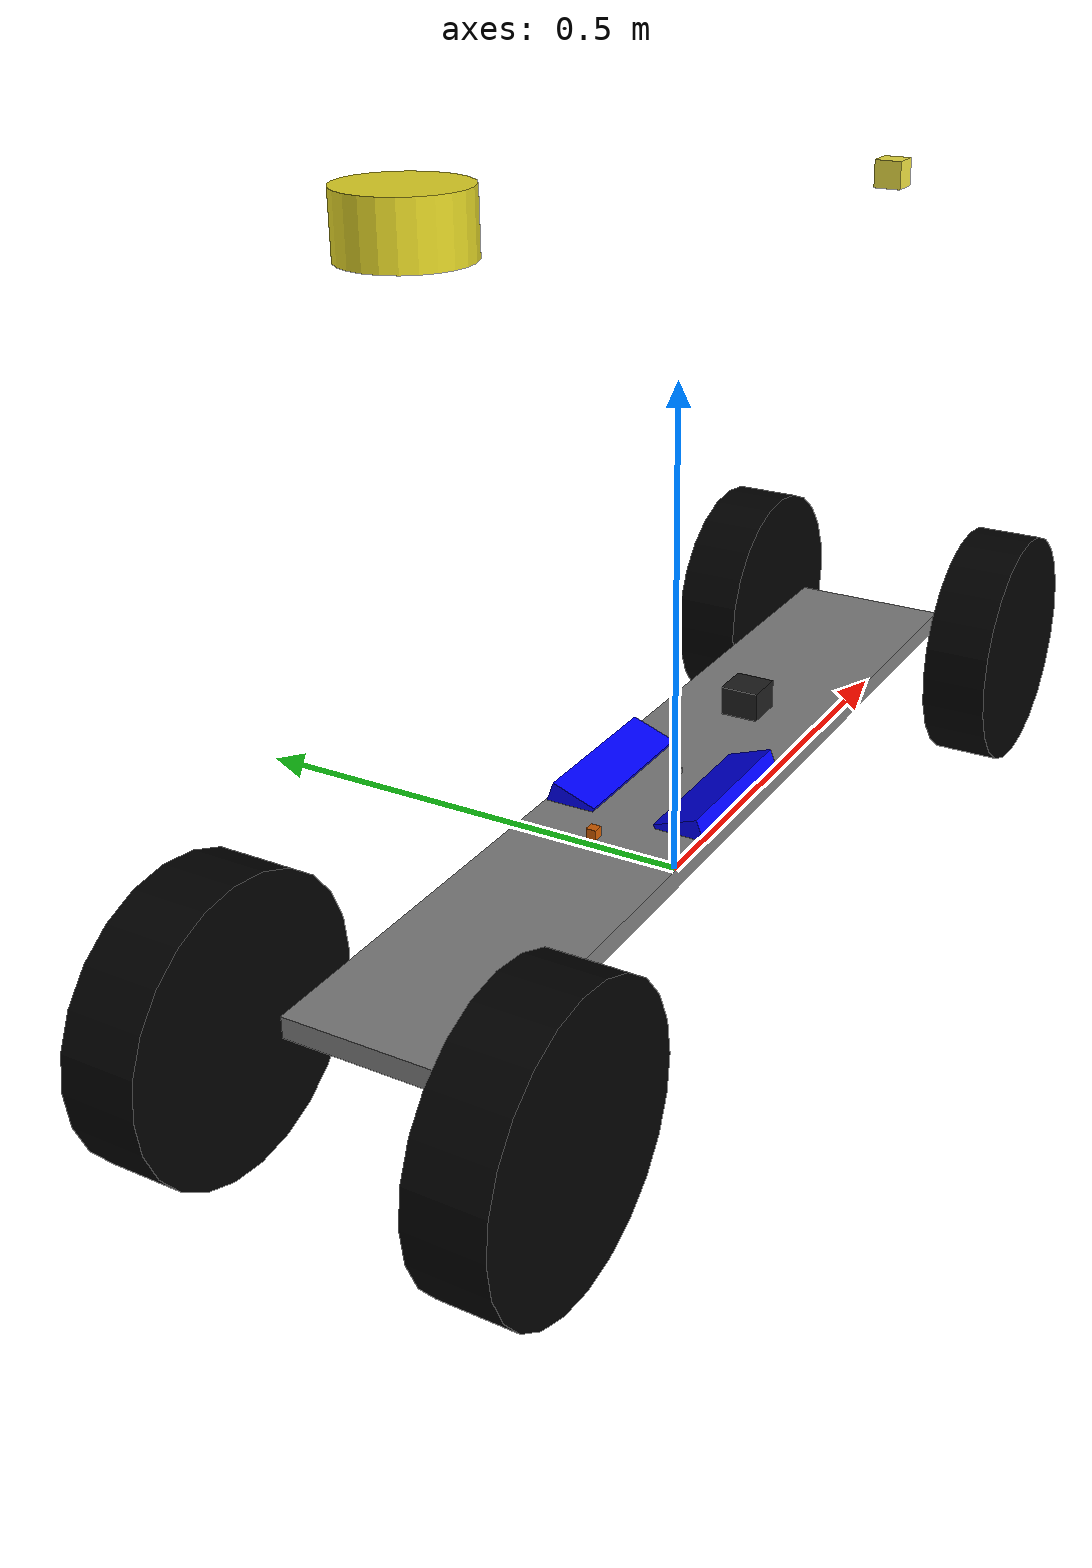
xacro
<?xml version="1.0"?>
<robot name="racecar" xmlns:xacro="http://www.ros.org/wiki/xacro">

  <!-- Degree-to-radian conversions -->
  <xacro:property name="degrees_45" value="0.785398163"/>
  <xacro:property name="degrees_90" value="1.57079633"/>

  <!-- chassis_length is measured along the x axis, chassis_width
       along the y axis, and chassis_height along the z axis. -->
  <xacro:property name="chassis_length" value="1.0"/>
  <xacro:property name="chassis_width" value="0.168"/>
  <xacro:property name="chassis_height" value="0.02"/>
  <xacro:property name="chassis_mass" value="10"/>

  <xacro:property name="battery_x_offset" value="0.055"/>
  <xacro:property name="battery_dist" value="0.065"/>
  <xacro:property name="battery_comp_depth" value="0.02"/>
  <xacro:property name="battery_comp_angle" value="0.34906585"/>
  <xacro:property name="battery_length" value="0.16"/>
  <xacro:property name="battery_width" value="0.047"/>
  <xacro:property name="battery_height" value="0.024"/>
  <xacro:property name="battery_mass" value="0.5025"/>

  <xacro:property name="hub_dia" value="0.3"/>
  <xacro:property name="tire_dia" value="0.26"/>
  <xacro:property name="tire_width" value="0.07"/>
  <xacro:property name="hex_hub_depth" value="0.005"/>
  <xacro:property name="wheel_mass" value="0.6"/>

  <xacro:property name="wheelbase" value="1.0"/>
  <xacro:property name="hex_hub_dist" value="0.365"/>
  <xacro:property name="axle_length" value="0.03"/>
  <xacro:property name="wheel_travel" value="0.084"/>
  <xacro:property name="shock_z_offset" value="0.0655"/>

  <xacro:property name="shock_eff_limit" value="12.5106"/>
  <xacro:property name="shock_vel_limit" value="1000"/>

  <xacro:property name="axle_eff_limit" value="5.12766"/>
  <xacro:property name="axle_vel_limit" value="244.8696"/>

  <!-- These constants are used to simulate a Traxxas 2056 servo operated at
       6 V. servo_stall_torque is measured in N m. servo_no_load_speed is
       measured in rad/s. -->
  <xacro:property name="servo_stall_torque" value="0.5649"/>
  <xacro:property name="servo_no_load_speed" value="4.553"/>

  <xacro:property name="layer_mass"   value="0.0" />
  <xacro:property name="layer_x" value="0.40"/>
  <xacro:property name="layer_y" value="0.18"/>
  <xacro:property name="layer_z" value="0.01"/>
  <xacro:property name="layer_height" value="0.08"/>

  <xacro:property name="layer" value="platform" />

  <material name="battery_mat">
    <color rgba="0 0 1 1"/>
  </material>
  <material name="chassis_mat">
    <color rgba="0.5 0.5 0.5 1"/>
  </material>
  <material name="tire_mat">
    <color rgba="0 0 0 1"/>
  </material>
  <material name="yellow">
    <color rgba="1 0.4 0 1"/>
  </material>

  <!-- Null inertial element. This is needed to make the model work with
       Gazebo. -->
  <xacro:macro name="null_inertial">
    <inertial>
      <mass value="0.001"/>
      <inertia ixx="0.001" ixy="0" ixz="0" iyy="0.001" iyz="0" izz="0.001"/>
    </inertial>
  </xacro:macro>

  <!-- Inertia of a solid cuboid. Width is measured along the x axis, depth
       along the y axis, and height along the z axis. -->
  <xacro:macro name="solid_cuboid_inertial"
               params="width depth height mass *origin">
    <inertial>
      <xacro:insert_block name="origin"/>
      <mass value="${mass}"/>
      <inertia ixx="${mass * (depth * depth + height * height) / 12}"
               ixy="0" ixz="0"
               iyy="${mass * (width * width + height * height) / 12}"
               iyz="0"
               izz="${mass * (width * width + depth * depth) / 12}"/>
    </inertial>
  </xacro:macro>

  <xacro:macro name="thick_walled_tube_inertial"
               params="inner_rad outer_rad height mass">
    <inertial>
      <mass value="${mass}"/>
      <inertia ixx="${(1 / 12) * mass * (3 * (inner_rad * inner_rad +
                    outer_rad * outer_rad) + height * height)}"
               ixy="0" ixz="0"
               iyy="${(1 / 12) * mass * (3 * (inner_rad * inner_rad +
                    outer_rad * outer_rad) + height * height)}"
               iyz="0"
               izz="${mass * (inner_rad * inner_rad +
                    outer_rad * outer_rad) / 2}"/>
    </inertial>
  </xacro:macro>

  <!-- Battery -->
  <xacro:macro name="battery" params="prefix reflect">
    <joint name="chassis_to_${prefix}_battery" type="fixed">
      <parent link="chassis"/>
      <child link="${prefix}_battery_offset"/>
      <origin xyz="${battery_x_offset - battery_length / 2}
                   ${reflect * battery_dist / 2}
                   0"
              rpy="${reflect * battery_comp_angle} 0 0"/>
    </joint>

    <link name="${prefix}_battery_offset">
      <xacro:null_inertial/>
    </link>

    <joint name="offset_to_${prefix}_battery" type="fixed">
      <parent link="${prefix}_battery_offset"/>
      <child link="${prefix}_battery"/>
      <origin xyz="0
                   ${reflect * battery_width / 2}
                   ${(battery_height / 2) - battery_comp_depth}"/>
    </joint>

    <link name="${prefix}_battery">
      <visual>
        <geometry>
          <box size="${battery_length} ${battery_width} ${battery_height}"/>
        </geometry>
        <material name="battery_mat"/>
      </visual>

      <collision>
        <geometry>
          <box size="${battery_length} ${battery_width} ${battery_height}"/>
        </geometry>
      </collision>

      <xacro:solid_cuboid_inertial
         width="${battery_length}" depth="${battery_width}"
         height="${battery_height}" mass="${battery_mass}">
        <origin/>
      </xacro:solid_cuboid_inertial>
    </link>

    <gazebo reference="${prefix}_battery">
      <material>Gazebo/Blue</material>
    </gazebo>
  </xacro:macro>

  <!-- Shock absorber -->
  <xacro:macro name="shock"
               params="lr_prefix fr_prefix lr_reflect fr_reflect child">
    <joint name="${lr_prefix}_${fr_prefix}_shock" type="prismatic">
      <parent link="chassis"/>
      <child link="${child}"/>

      <origin xyz="${fr_reflect * wheelbase / 2}
                   ${lr_reflect * ((hex_hub_dist / 2) - axle_length)}
                   ${(wheel_travel / 2) - shock_z_offset}"/>
      <axis xyz="0 0 -1"/>
      <limit lower="${-wheel_travel / 2}" upper="${wheel_travel / 2}"
             effort="${shock_eff_limit}" velocity="${shock_vel_limit}"/>
    </joint>
    <transmission name="${lr_prefix}_${fr_prefix}_shock_trans">
      <type>transmission_interface/SimpleTransmission</type>
      <joint name="${lr_prefix}_${fr_prefix}_shock">
        <hardwareInterface>hardware_interface/EffortJointInterface</hardwareInterface>
      </joint>
      <actuator name="${lr_prefix}_${fr_prefix}_shock_act">
        <!-- This hardwareInterface element exists for compatibility
             with ROS Hydro. -->
        <hardwareInterface>hardware_interface/EffortJointInterface</hardwareInterface>
        <mechanicalReduction>1</mechanicalReduction>
      </actuator>
    </transmission>
  </xacro:macro>

  <!-- The "wheel" macro defines an axle carrier, axle, and wheel. -->
  <xacro:macro name="wheel" params="lr_prefix fr_prefix lr_reflect">
    <link name="${lr_prefix}_${fr_prefix}_axle_carrier">
      <xacro:null_inertial/>
    </link>

    <!-- The left and right axles have the same axis so that identical
         rotation values cause the wheels to rotate in the same direction. -->
    <joint name="${lr_prefix}_${fr_prefix}_axle" type="continuous">
      <parent link="${lr_prefix}_${fr_prefix}_axle_carrier"/>
      <child link="${lr_prefix}_${fr_prefix}_wheel"/>
      <origin rpy="${degrees_90} 0 0"/>
      <axis xyz="0 0 -1"/>
      <limit effort="${axle_eff_limit}" velocity="${axle_vel_limit}"/>
    </joint>
    <transmission name="${lr_prefix}_${fr_prefix}_axle_trans">
      <type>transmission_interface/SimpleTransmission</type>
      <joint name="${lr_prefix}_${fr_prefix}_axle">
        <hardwareInterface>hardware_interface/EffortJointInterface</hardwareInterface>
      </joint>
      <actuator name="${lr_prefix}_${fr_prefix}_axle_act">
        <!-- This hardwareInterface element exists for compatibility
             with ROS Hydro. -->
        <hardwareInterface>hardware_interface/EffortJointInterface</hardwareInterface>
        <mechanicalReduction>1</mechanicalReduction>
      </actuator>
    </transmission>

    <link name="${lr_prefix}_${fr_prefix}_wheel">
      <visual>
        <origin xyz="0
                     ${lr_reflect * (axle_length - (tire_width /
                     2 - hex_hub_depth))}
                     0"/>
        <geometry>
          <cylinder radius="${tire_dia / 2}" length="${tire_width}"/>
        </geometry>
        <material name="tire_mat"/>
      </visual>

      <collision>
        <origin xyz="0
                     ${lr_reflect * (axle_length - (tire_width /
                     2 - hex_hub_depth))}
                     0"/>
        <geometry>
          <cylinder radius="${tire_dia / 2}" length="${tire_width}"/>
        </geometry>
      </collision>

      <xacro:thick_walled_tube_inertial
          inner_rad="${hub_dia / 2}" outer_rad="${tire_dia / 2}"
          height="${tire_width}" mass="${wheel_mass}"/>
    </link>

    <gazebo reference="${lr_prefix}_${fr_prefix}_wheel">
      <material>Gazebo/Black</material>
    </gazebo>
  </xacro:macro>

  <!-- Front wheel -->
  <xacro:macro name="front_wheel"
               params="lr_prefix fr_prefix lr_reflect fr_reflect">
    <xacro:shock lr_prefix="${lr_prefix}" fr_prefix="${fr_prefix}"
                 lr_reflect="${lr_reflect}" fr_reflect="${fr_reflect}"
                 child="${lr_prefix}_steering_link"/>

    <link name="${lr_prefix}_steering_link">
      <xacro:null_inertial/>
    </link>

    <joint name="${lr_prefix}_steering_joint" type="revolute">
      <parent link="${lr_prefix}_steering_link"/>
      <child link="${lr_prefix}_${fr_prefix}_axle_carrier"/>
      <axis xyz="0 0 1"/>
      <limit lower="${-degrees_45}" upper="${degrees_45}"
             effort="${servo_stall_torque}" velocity="${servo_no_load_speed}"/>
    </joint>
    <transmission name="${lr_prefix}_steering_trans">
      <type>transmission_interface/SimpleTransmission</type>
      <joint name="${lr_prefix}_steering_joint">
        <hardwareInterface>hardware_interface/EffortJointInterface</hardwareInterface>
      </joint>
      <actuator name="${lr_prefix}_steering_act">
        <!-- This hardwareInterface element exists for compatibility
             with ROS Hydro. -->
        <hardwareInterface>hardware_interface/EffortJointInterface</hardwareInterface>
        <mechanicalReduction>1</mechanicalReduction>
      </actuator>
    </transmission>

    <xacro:wheel lr_prefix="${lr_prefix}" fr_prefix="${fr_prefix}"
                 lr_reflect="${lr_reflect}"/>
  </xacro:macro>

  <!-- Rear wheel -->
  <xacro:macro name="rear_wheel"
               params="lr_prefix fr_prefix lr_reflect fr_reflect">
    <xacro:shock lr_prefix="${lr_prefix}" fr_prefix="${fr_prefix}"
                 lr_reflect="${lr_reflect}" fr_reflect="${fr_reflect}"
                 child="${lr_prefix}_${fr_prefix}_axle_carrier"/>
    <xacro:wheel lr_prefix="${lr_prefix}" fr_prefix="${fr_prefix}"
                 lr_reflect="${lr_reflect}"/>
  </xacro:macro>

    <link name="base_footprint"/>
  <!-- base_link must have geometry so that its axes can be displayed in
       rviz. -->
  <link name="base_link">
    <visual>
      <geometry>
        <box size="0.01 0.01 0.01"/>
      </geometry>
      <material name="chassis_mat"/>
    </visual>
  </link>
  <gazebo reference="base_link">
    <material>Gazebo/Grey</material>
  </gazebo>

  <joint name="base_footprint_to_base_link" type="fixed">
    <parent link="base_footprint"/>
    <child link="base_link"/>
    <origin xyz="0 0 ${(wheel_travel/2)+shock_z_offset}" />
  </joint>

  <!-- Chassis -->
  <link name="chassis">
    <visual>
      <origin xyz="0 0 ${-chassis_height / 2}"/>
      <geometry>
        <box size="${chassis_length} ${chassis_width} ${chassis_height}"/>
      </geometry>
      <material name="chassis_mat"/>
    </visual>

    <collision>
      <origin xyz="0 0 ${-chassis_height / 2}"/>
      <geometry>
        <box size="${chassis_length} ${chassis_width} ${chassis_height}"/>
      </geometry>
    </collision>

    <xacro:solid_cuboid_inertial
        width="${chassis_length}" depth="${chassis_width}"
        height="${chassis_height}" mass="${chassis_mass}">
      <origin xyz="0 0 ${-chassis_height / 2}"/>
    </xacro:solid_cuboid_inertial>
  </link>
  <gazebo reference="chassis">
    <material>Gazebo/Grey</material>
  </gazebo>

  <joint name="base_link_to_chassis" type="fixed">
    <parent link="base_link"/>
    <child link="chassis"/>
  </joint>

  <!-- Batteries -->
  <xacro:battery prefix="left" reflect="1"/>
  <xacro:battery prefix="right" reflect="-1"/>

  <!-- Wheels -->
  <xacro:front_wheel lr_prefix="left" fr_prefix="front"
                     lr_reflect="1" fr_reflect="1"/>
  <xacro:front_wheel lr_prefix="right" fr_prefix="front"
                     lr_reflect="-1" fr_reflect="1"/>
  <xacro:rear_wheel lr_prefix="left" fr_prefix="rear"
                    lr_reflect="1" fr_reflect="-1"/>
  <xacro:rear_wheel lr_prefix="right" fr_prefix="rear"
                    lr_reflect="-1" fr_reflect="-1"/>

  <gazebo>
    <plugin name="gazebo_ros_control" filename="libgazebo_ros_control.so">
    <legacyModeNS>true</legacyModeNS>
    <robotSimType>gazebo_ros_control/DefaultRobotHWSim</robotSimType>
    <robotNamespace>/racecar</robotNamespace>
    </plugin>
  </gazebo>

 <link name="imu_link">
            <inertial>
                <mass value="0.001" />
                <origin xyz="0 0 0" />
                <inertia ixx="0.001" ixy="0.0" ixz="0.0"
                         iyy="0.001" iyz="0.0"
                         izz="0.001" />
            </inertial>

            <visual>
                <origin xyz=" 0 0 0 " rpy="0 0 0" />
                <geometry>
                    <box size="0.04 0.04 0.03" />
                </geometry>
            </visual>

            <collision>
                <origin xyz="0.0 0.0 0.0" rpy="0 0 0" />
                <geometry>
                    <box size="0.04 0.04 0.03" />
                </geometry>
            </collision>
        </link>
        <gazebo reference="imu_link">
            <material>Gazebo/Black</material>
        </gazebo>

        <gazebo reference="imu_link">
            <gravity>true</gravity>
            <sensor name="imu_sensor" type="imu">
                <always_on>true</always_on>
                <update_rate>100</update_rate>
                <visualize>true</visualize>
                <topic>/imu_data</topic>
                <plugin filename="libgazebo_ros_imu_sensor.so" name="imu_plugin">
                    <topicName>/imu</topicName>
                    <bodyName>imu_link</bodyName>
                    <updateRateHZ>100.0</updateRateHZ>
                    <gaussianNoise>0.0</gaussianNoise>
                    <xyzOffset>0 0 0</xyzOffset>
                    <rpyOffset>0 0 0</rpyOffset>
                    <frameName>imu_link</frameName>
                </plugin>
                <pose>0 0 0 0 0 0</pose>
            </sensor>
        </gazebo>

        <link name="lidar_link">
            <inertial>
                <mass value="0.001" />
                <origin xyz="0 0 0" />
                <inertia ixx="0.001" ixy="0.0" ixz="0.0"
                         iyy="0.001" iyz="0.0"
                         izz="0.001" />
            </inertial>

            <visual>
                <origin xyz=" 0 0 0 " rpy="0 0 0" />
                <geometry>
                    <cylinder length="0.05" radius="0.05"/>
                </geometry>
            </visual>

            <collision>
                <origin xyz="0.0 0.0 0.0" rpy="0 0 0" />
                <geometry>
                    <cylinder length="0.06" radius="0.05"/>
                </geometry>
            </collision>
        </link>
        <gazebo reference="lidar_link">
            <material>yellow</material>
        </gazebo>

        <gazebo reference="lidar_link">
            <sensor type="ray" name="ls01g">
                <pose>0 0 0 0 0 0</pose>
                <visualize>false</visualize>
                <update_rate>40.0</update_rate>
                <ray>
                    <scan>
                        <horizontal>
                            <samples>720</samples>
                            <resolution>1</resolution>
                            <min_angle>-3.1415926</min_angle>
                            <max_angle>3.1415926</max_angle>
                        </horizontal>
                    </scan>
                    <range>
                        <min>0.10</min>
                        <max>8.0</max>
                        <resolution>0.01</resolution>
                    </range>
                    <noise>
                        <type>gaussian</type>
                        <mean>0.0</mean>
                        <stddev>0.01</stddev>
                    </noise>
                </ray>
                <plugin name="gazebo_ls01g" filename="libgazebo_ros_laser.so">
                    <topicName>/scan</topicName>
                    <frameName>lidar_link</frameName>
                </plugin>
            </sensor>
        </gazebo>

     <link name="camera_link">
	    <inertial>
		<mass value="0.001" />
		<origin xyz="0 0 0" />
		<inertia ixx="0.001" ixy="0.0" ixz="0.0"
		         iyy="0.001" iyz="0.0"
		         izz="0.001" />
	    </inertial>

	    <visual>
		<origin xyz=" 0 0 0 " rpy="1.57 0 1.57" />
		<geometry>
		    <box size="0.03 0.03 0.03" />
		</geometry>
	    </visual>

	    <collision>
		<origin xyz="0.0 0.0 0.0" rpy="0 0 0" />
		<geometry>
		    <box size="0.03 0.03 0.03" />
		</geometry>
	    </collision>
	</link>

    <gazebo reference="camera_link">
      <sensor type="depth" name="camera">
        <always_on>true</always_on>
        <update_rate>20.0</update_rate>
        <camera>
          <horizontal_fov>1.3962</horizontal_fov>
          <image>
            <format>B8G8R8</format>
            <width>640</width>
            <height>480</height>
          </image>
          <clip>
            <near>0.05</near>
            <far>8.0</far>
          </clip>
        </camera>
     <plugin name="camera_controller" filename="libgazebo_ros_openni_kinect.so">
       <baseline>0.1</baseline>
       <alwaysOn>true</alwaysOn>
       <updateRate>30.0</updateRate>
       <cameraName>camera</cameraName>
       <imageTopicName>/camera/rgb/image_raw</imageTopicName>
       <cameraInfoTopicName>/camera/rgb/camera_info</cameraInfoTopicName>
       <depthImageTopicName>/camera/depth/image_raw</depthImageTopicName>
       <depthImageCameraInfoTopicName>/camera/depth_registered/camera_info</depthImageCameraInfoTopicName>
       <pointCloudTopicName>/camera/depth_registered/points</pointCloudTopicName>
       <frameName>camera_link_fake</frameName>
       <distortion_k1>0.0</distortion_k1>
       <distortion_k2>0.0</distortion_k2>
       <distortion_k3>0.0</distortion_k3>
       <distortion_t1>0.0</distortion_t1>
       <distortion_t2>0.0</distortion_t2>
       <pointCloudCutoff>0.4</pointCloudCutoff>
     </plugin>
   </sensor>
  </gazebo>

  <joint name="lidar_joint" type="fixed">
    <origin xyz="-0.4 0 0.6" rpy="0 0 0" />
    <parent link="base_link"/>
    <child link="lidar_link"/>
  </joint>

  <joint name="imu_joint" type="fixed">
    <origin xyz="0.16 0 0.015" rpy="0 0 0" />
    <parent link="base_link"/>
    <child link="imu_link"/>
  </joint>

  <joint name="camera_joint" type="fixed">
    <origin xyz="0.5 0 0.5" rpy="0 0 0" />
    <parent link="base_link"/>
    <child link="camera_link"/>
  </joint>

  <link name="camera_link_fake"></link>
  <joint name="camera_joint_fake" type="fixed">
    <origin xyz="0 0 0" rpy="-1.5708 0 -1.5708"/>
    <parent link="camera_link"/>
    <child link="camera_link_fake"/>
  </joint>

  <joint name="gps_joint" type="fixed">
  <origin xyz="-0.16 0 0.015" rpy="0 0 0" />
  <parent link="base_link"/>
  <child link="gps_link"/>
  </joint>

<link name="gps_link">
  <inertial>
   <mass value="0.001" />
   <origin xyz="0 0 0" />
   <inertia ixx="0.001" ixy="0.0" ixz="0.0"
		         iyy="0.001" iyz="0.0"
		         izz="0.001" />
  </inertial>
  <visual>
    <origin xyz="0 0 0" rpy="0 0 0" />
    <geometry>
      <box size="0.01 0.01 0.01" />
    </geometry>
  </visual>
  <collision>
    <origin xyz="0 0 0" rpy="0 0 0" />
    <geometry>
      <box size="0.01 0.01 0.01" />
    </geometry>
  </collision>
</link>

<gazebo>
  <plugin name="quadrotor_gps_sim" filename="libhector_gazebo_ros_gps.so">
    <alwaysOn>true</alwaysOn>
    <updateRate>10.0</updateRate>
    <frameId>base_link</frameId>
    <topicName>fix</topicName>
    <velocityTopicName>fix_vel</velocityTopicName>
    <drift>5.0 5.0 5.0</drift>
    <gaussianNoise>0.1 0.1 0.1</gaussianNoise>
    <velocityDrift>0 0 0</velocityDrift>
    <velocityGaussianNoise>0.1 0.1 0.1</velocityGaussianNoise>
  </plugin>
</gazebo>

</robot>
